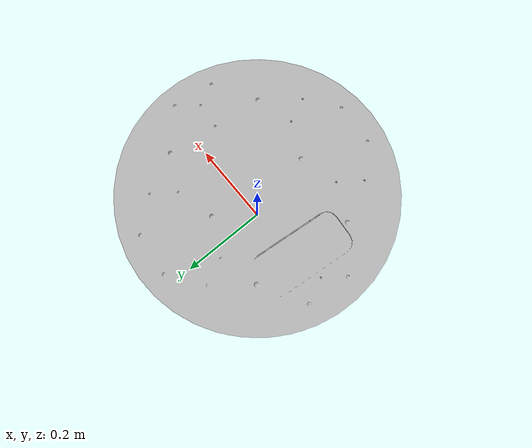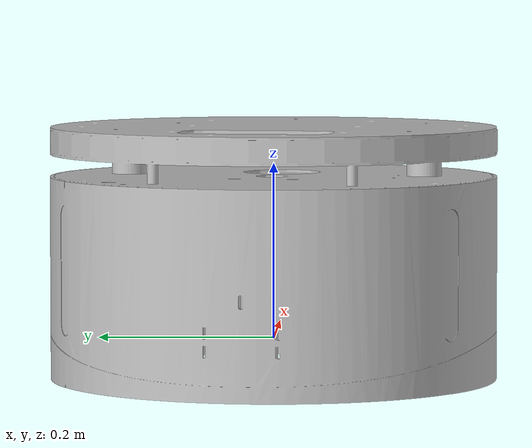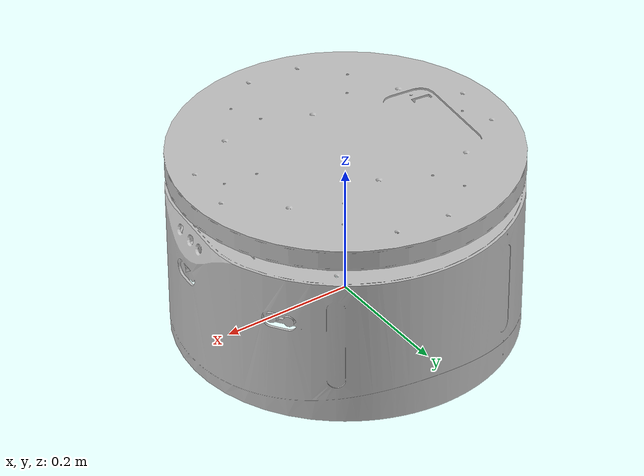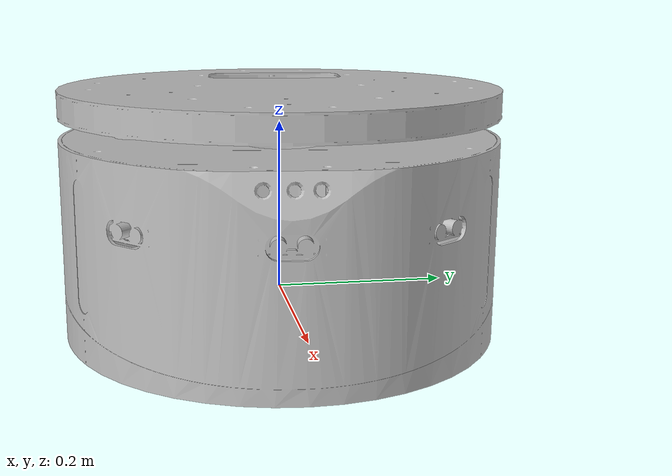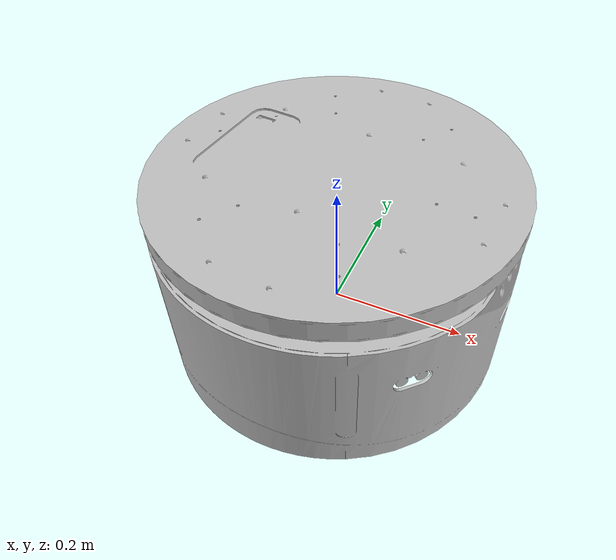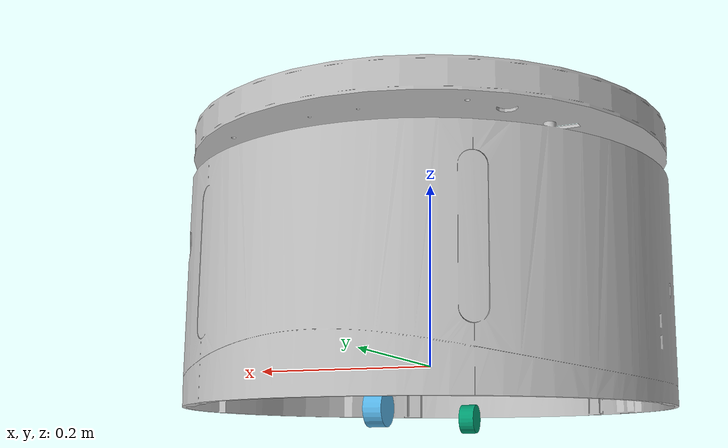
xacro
<?xml version="1.0"?>

<robot name="water_base" xmlns:xacro="http://ros.org/wiki/xacro">
  <xacro:property name="M_PI" value="3.1415926535897931" />
  <link
    name="base_link">
    <inertial>
      <origin
        xyz="0.000104664511012093 0.0049105114230535 0.145650059711867"
        rpy="0 0 0" />
      <mass
        value="3.71154442446242" />
      <inertia
        ixx="0.0465430882693072"
        ixy="0"
        ixz="0"
        iyy="0.0625130465095892"
        iyz="0"
        izz="0.0934102121820444" />
    </inertial>
    <visual>
      <origin
        xyz="0 0 0"
        rpy="0 0 -1.67" />
      <geometry>
        <mesh
          filename="package://water_description/meshes/base_link.STL" />
      </geometry>
      <material
        name="">
        <color
          rgba="0.752941176470588 0.752941176470588 0.752941176470588 1" />
      </material>
    </visual>
    <collision>
      <origin
        xyz="0 0 0"
        rpy="0 0 0" />
      <geometry>
        <mesh
          filename="package://water_description/meshes/base_link.STL" />
      </geometry>
    </collision>
  </link>

  <joint name="caster_front_joint" type="fixed">
    <parent link="base_link"/>
    <child link="caster_front_link"/>
    <origin xyz="0 0.15 -0.05" rpy="${-M_PI/2} 0 ${M_PI/2}"/>
  </joint>
  <link name="caster_front_link">
    <collision>
      <geometry>
        <cylinder length="0.0176" radius="0.017"/>
      </geometry>
      <origin rpy="0 0 0" xyz="0 0 0"/>
    </collision>
    <inertial>
      <mass value="0.01" />
      <origin xyz="0 0 0" />
      <inertia ixx="0.001" ixy="0.0" ixz="0.0"
                iyy="0.001" iyz="0.0"
                izz="0.001" />
    </inertial>
    <visual>
      <geometry>
        <cylinder length="0.0176" radius="0.017"/>
      </geometry>
      <origin xyz="0 0 0" rpy="0 0 0"/>
    </visual>
  </link>

  <joint name="caster_back_joint" type="fixed">
    <parent link="base_link"/>
    <child link="caster_back_link"/>
    <origin xyz="0.0 -0.15 -0.05" rpy="${-M_PI/2} 0 ${M_PI/2}"/>
  </joint>
  <link name="caster_back_link">
    <collision>
      <geometry>
        <cylinder length="0.0176" radius="0.017"/>
      </geometry>
      <origin rpy="0 0 0" xyz="0 0 0"/>
    </collision>
    <inertial>
      <mass value="0.01" />
      <origin xyz="0 0 0" />
      <inertia ixx="0.001" ixy="0.0" ixz="0.0"
                iyy="0.001" iyz="0.0"
                izz="0.001" />
    </inertial>
    <visual>
      <geometry>
        <cylinder length="0.0176" radius="0.017"/>
      </geometry>
      <origin xyz="0 0 0" rpy="0 0 0"/>
    </visual>
  </link>

</robot>
